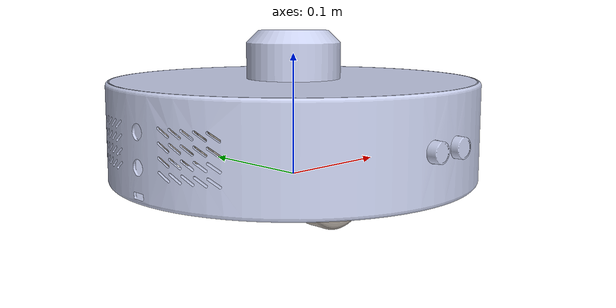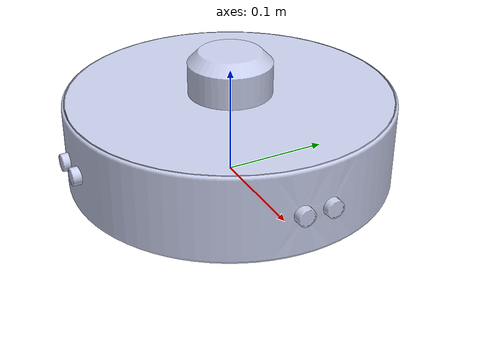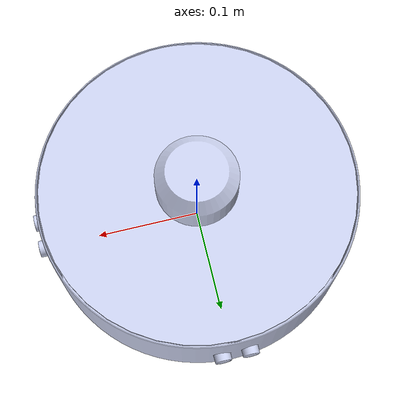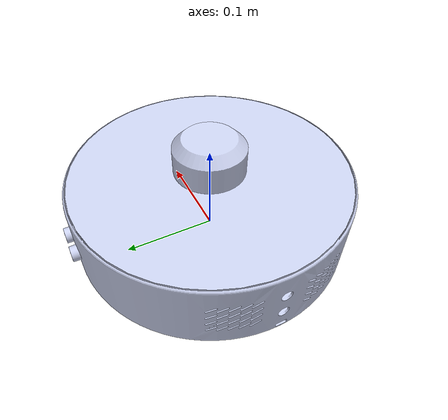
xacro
<?xml version="1.0" encoding="utf-8"?>
<robot
  name="vacuum_robot"
  xmlns:xacro="http://www.ros.org/wiki/xacro">

<!-- Import Rviz colors -->
<xacro:include filename="$(find vacuum_robot)/urdf/materials.xacro" />

<!-- Import all Gazebo-customization elements, including Gazebo colors -->
  <xacro:include filename="$(find vacuum_robot)/urdf/mybot.gazebo" />

 <!-- dummy link -->
        <link name="base_footprint"/>
        <joint name="dummy_joint" type="fixed">
          <origin xyz="0.0 0.0 0.0" rpy="0.0 0.0 0.0"/>
          <parent link="base_footprint"/>
          <child link="base_link"/>
          <axis xyz="0.0 0.0 0.0"/>
          <limit lower="0.0" upper="0.0" effort="0.0" velocity="0.0"/>
        </joint>

  <link
    name="base_link">
    <inertial>
      <origin
        xyz="0.001167 -0.00017905 0.0177"
        rpy="0 0 0" />
      <mass
        value="0.33739" />
      <inertia
        ixx="0.0028468"
        ixy="6.2586E-10"
        ixz="1.4453E-06"
        iyy="0.0028585"
        iyz="2.2404E-09"
        izz="0.0053109" />
    </inertial>
    <visual>
      <origin
        xyz="0 0 0"
        rpy="0 0 0" />
      <geometry>
        <mesh
          filename="package://vacuum_robot/meshes/base_link.STL" />
      </geometry>
      <material
        name="">
        <color
          rgba="0.79216 0.81961 0.93333 1" />
      </material>
    </visual>
    <collision>
      <origin
        xyz="0 0 0"
        rpy="0 0 0" />
      <geometry>
        <mesh
          filename="package://vacuum_robot/meshes/base_link.STL" />
      </geometry>
    </collision>
  </link>

  <link
    name="RightUltra_link">
    <inertial>
      <origin
        xyz="-0.00059247 -0.14853 0.040053"
        rpy="0 0 0" />
      <mass
        value="0.0062273" />
      <inertia
        ixx="2.3852E-07"
        ixy="1.3189E-10"
        ixz="1.9966E-10"
        iyy="1.2204E-06"
        iyz="2.0237E-09"
        izz="1.1941E-06" />
    </inertial>
    <visual>
      <origin
        xyz="0 0 0"
        rpy="0 0 0" />
      <geometry>
        <mesh
          filename="package://vacuum_robot/meshes/RightUltra_link.STL" />
      </geometry>
      <material
        name="">
        <color
          rgba="0.79216 0.81961 0.93333 1" />
      </material>
    </visual>
    <collision>
      <origin
        xyz="0 0 0"
        rpy="0 0 0" />
      <geometry>
        <mesh
          filename="package://vacuum_robot/meshes/RightUltra_link.STL" />
      </geometry>
    </collision>
  </link>

  <joint
    name="RightUltra_joint"
    type="fixed">
    <origin
      xyz="0 0 0"
      rpy="0 0 0" />
    <parent
      link="base_link" />
    <child
      link="RightUltra_link" />
    <axis
      xyz="0 0 0" />
  </joint>

  <link
    name="FrontUltra_link">
    <inertial>
      <origin
        xyz="0.1477 -0.00018295 0.040053"
        rpy="0 0 0" />
      <mass
        value="0.0062273" />
      <inertia
        ixx="1.2204E-06"
        ixy="-1.3189E-10"
        ixz="-2.0237E-09"
        iyy="2.3852E-07"
        iyz="1.9966E-10"
        izz="1.1941E-06" />
    </inertial>
    <visual>
      <origin
        xyz="0 0 0"
        rpy="0 0 0" />
      <geometry>
        <mesh
          filename="package://vacuum_robot/meshes/FrontUltra_link.STL" />
      </geometry>
      <material
        name="">
        <color
          rgba="0.79216 0.81961 0.93333 1" />
      </material>
    </visual>
    <collision>
      <origin
        xyz="0 0 0"
        rpy="0 0 0" />
      <geometry>
        <mesh
          filename="package://vacuum_robot/meshes/FrontUltra_link.STL" />
      </geometry>
    </collision>
  </link>

  <joint
    name="FrontUltra_joint"
    type="fixed">
    <origin
      xyz="0 0 0"
      rpy="0 0 0" />
    <parent
      link="base_link" />
    <child
      link="FrontUltra_link" />
    <axis
      xyz="0 0 0" />
  </joint>

  <link
    name="LeftUltra_link">
    <inertial>
      <origin
        xyz="-0.00058406 0.14846 0.040053"
        rpy="0 0 0" />
      <mass
        value="0.0062273" />
      <inertia
        ixx="2.3852E-07"
        ixy="1.3189E-10"
        ixz="-1.9966E-10"
        iyy="1.2204E-06"
        iyz="-2.0237E-09"
        izz="1.1941E-06" />
    </inertial>
    <visual>
      <origin
        xyz="0 0 0"
        rpy="0 0 0" />
      <geometry>
        <mesh
          filename="package://vacuum_robot/meshes/LeftUltra_link.STL" />
      </geometry>
      <material
        name="">
        <color
          rgba="0.79216 0.81961 0.93333 1" />
      </material>
    </visual>
    <collision>
      <origin
        xyz="0 0 0"
        rpy="0 0 0" />
      <geometry>
        <mesh
          filename="package://vacuum_robot/meshes/LeftUltra_link.STL" />
      </geometry>
    </collision>
  </link>

  <joint
    name="LeftUltra_joint"
    type="fixed">
    <origin
      xyz="0 0 0"
      rpy="0 0 0" />
    <parent
      link="base_link" />
    <child
      link="LeftUltra_link" />
    <axis
      xyz="0 0 0" />
  </joint>
  <link
    name="CasterWheel_link">
    <inertial>
      <origin
        xyz="0.074308 -7.4627E-05 -0.0057749"
        rpy="0 0 0" />
      <mass
        value="0.0066846" />
      <inertia
        ixx="4.665E-07"
        ixy="1.9714E-22"
        ixz="-3.4365E-25"
        iyy="4.665E-07"
        iyz="-7.5675E-24"
        izz="8.8561E-07" />
    </inertial>
    <visual>
      <origin
        xyz="0 0 0"
        rpy="0 0 0" />
      <geometry>
        <mesh
          filename="package://vacuum_robot/meshes/CasterWheel_link.STL" />
      </geometry>
      <material
        name="">
        <color
          rgba="0.79216 0.81961 0.93333 1" />
      </material>
    </visual>
    <collision>
      <origin
        xyz="0 0 0"
        rpy="0 0 0" />
      <geometry>
        <mesh
          filename="package://vacuum_robot/meshes/CasterWheel_link.STL" />
      </geometry>
    </collision>
  </link>

  <joint
    name="CasterWheel_joint"
    type="fixed">
    <origin
      xyz="0 0 0"
      rpy="0 0 0" />
    <parent
      link="base_link" />
    <child
      link="CasterWheel_link" />
    <axis
      xyz="0 0 0" />
  </joint>
  <link
    name="RightWheel_link">
    <inertial>
      <origin
        xyz="-4.7552E-11 -0.015624 7.2047E-11"
        rpy="0 0 0" />
      <mass
        value="0.30664" />
      <inertia
        ixx="0.00012023"
        ixy="6.996E-14"
        ixz="-1.216E-13"
        iyy="0.0002214"
        iyz="-6.3898E-14"
        izz="0.00012023" />
    </inertial>
    <visual>
      <origin
        xyz="0 0 0"
        rpy="0 0 0" />
      <geometry>
        <mesh
          filename="package://vacuum_robot/meshes/RightWheel_link.STL" />
      </geometry>
      <material
        name="">
        <color
          rgba="0.65098 0.61961 0.58824 1" />
      </material>
    </visual>
    <collision>
      <origin
        xyz="0 0 0"
        rpy="0 0 0" />
      <geometry>
        <mesh
          filename="package://vacuum_robot/meshes/RightWheel_link.STL" />
      </geometry>
    </collision>
  </link>

  <joint
    name="RightWheel_joint"
    type="continuous">
    <origin
      xyz="-0.047803 -0.071097 0.014931"
      rpy="0 0 0" />
    <parent
      link="base_link" />
    <child
      link="RightWheel_link" />
    <axis
      xyz="0.014195 -0.99982 -0.012697" />
    <limit
      effort="3"
      velocity="3" />
  </joint>

  <link
    name="LeftWheel_link">
    <inertial>
      <origin
        xyz="-4.7554E-11 0.015624 -7.2047E-11"
        rpy="0 0 0" />
      <mass
        value="0.30664" />
      <inertia
        ixx="0.00012023"
        ixy="-6.9962E-14"
        ixz="1.216E-13"
        iyy="0.0002214"
        iyz="-6.3898E-14"
        izz="0.00012023" />
    </inertial>
    <visual>
      <origin
        xyz="0 0 0"
        rpy="0 0 0" />
      <geometry>
        <mesh
          filename="package://vacuum_robot/meshes/LeftWheel_link.STL" />
      </geometry>
      <material
        name="">
        <color
          rgba="0.65098 0.61961 0.58824 1" />
      </material>
    </visual>
    <collision>
      <origin
        xyz="0 0 0"
        rpy="0 0 0" />
      <geometry>
        <mesh
          filename="package://vacuum_robot/meshes/LeftWheel_link.STL" />
      </geometry>
    </collision>
  </link>

  <joint
    name="LeftWheel_Joint"
    type="continuous">
    <origin
      xyz="-0.047803 0.070646 0.014931"
      rpy="0 0 0" />
    <parent
      link="base_link" />
    <child
      link="LeftWheel_link" />
    <axis
      xyz="0.014195 -0.99982 -0.012697" />
    <limit
      effort="3"
      velocity="3" />
  </joint>

  <link
    name="Cover_link">
    <inertial>
      <origin
        xyz="0.001167 -0.00017905 0.0177"
        rpy="0 0 0" />
      <mass
        value="0.33739" />
      <inertia
        ixx="0.0028468"
        ixy="6.2586E-10"
        ixz="1.4453E-06"
        iyy="0.0028585"
        iyz="2.2404E-09"
        izz="0.0053109" />
    </inertial>
    <visual>
      <origin
        xyz="0 0 0"
        rpy="0 0 0" />
      <geometry>
        <mesh
          filename="package://vacuum_robot/meshes/Cover_link.STL" />
      </geometry>
      <material
        name="">
        <color
          rgba="0.79216 0.81961 0.93333 1" />
      </material>
    </visual>
    <collision>
      <origin
        xyz="0 0 0"
        rpy="0 0 0" />
      <geometry>
        <mesh
          filename="package://vacuum_robot/meshes/Cover_link.STL" />
      </geometry>
    </collision>
  </link>

  <joint
    name="Cover_joint"
    type="fixed">
    <origin
      xyz="0 0 0"
      rpy="0 0 0" />
    <parent
      link="base_link" />
    <child
      link="Cover_link" />
    <axis
      xyz="0 0 0" />
  </joint>

  <link
    name="Lidar_link">
    <inertial>
      <origin
        xyz="-2.0817E-17 4.7184E-15 0.098458"
        rpy="0 0 0" />
      <mass
        value="0.17056" />
      <inertia
        ixx="8.0287E-05"
        ixy="9.209E-38"
        ixz="-1.7995E-37"
        iyy="8.0287E-05"
        iyz="3.0477E-23"
        izz="0.00012075" />
    </inertial>
    <visual>
      <origin
        xyz="0 0 -0.1"
        rpy="0 0 0" />
      <geometry>
        <mesh
          filename="package://vacuum_robot/meshes/Lidar_link.STL" />
      </geometry>
      <material
        name="">
        <color
          rgba="0.79216 0.81961 0.93333 1" />
      </material>
    </visual>
    <collision>
      <origin
        xyz="0 0 -0.1"
        rpy="0 0 0" />
      <geometry>
        <mesh
          filename="package://vacuum_robot/meshes/Lidar_link.STL" />
      </geometry>
    </collision>
  </link>

  <joint
    name="Lidar_joint"
    type="fixed">
    <origin
      xyz="0 0 0.1"
      rpy="0 0 0" />
    <parent
      link="Cover_link" />
    <child
      link="Lidar_link" />
    <axis
      xyz="0 0 0" />
  </joint>
</robot>

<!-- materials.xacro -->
<robot>

  <material name="black">
    <color rgba="0.0 0.0 0.0 1.0"/>
  </material>

  <material name="blue">
    <color rgba="0.0 0.0 0.8 1.0"/>
  </material>

  <material name="green">
    <color rgba="0.0 0.8 0.0 1.0"/>
  </material>

  <material name="grey">
    <color rgba="0.2 0.2 0.2 1.0"/>
  </material>

  <material name="orange">
    <color rgba="${255/255} ${108/255} ${10/255} 1.0"/>
  </material>

  <material name="brown">
    <color rgba="${222/255} ${207/255} ${195/255} 1.0"/>
  </material>

  <material name="red">
    <color rgba="0.8 0.0 0.0 1.0"/>
  </material>

  <material name="white">
    <color rgba="1.0 1.0 1.0 1.0"/>
  </material>

</robot>
